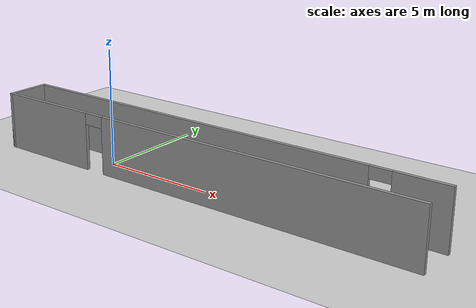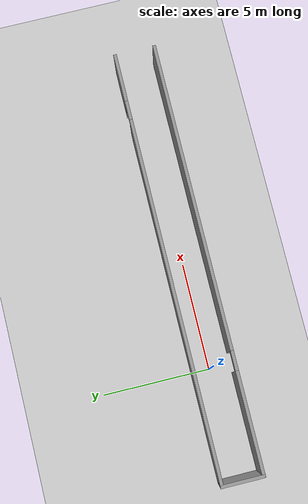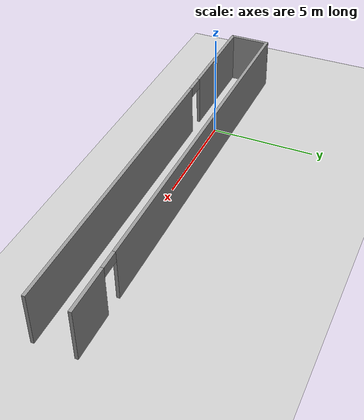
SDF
<sdf version="1.6">
 <world name="default">
  <light name="sun" type="directional">
   <pose>0 0 10 0 -0 0</pose>
   <diffuse>0.8 0.8 0.8 1</diffuse>
   <specular>0.2 0.2 0.2 1</specular>
   <attenuation>
    <range>1000</range>
    <constant>0.9</constant>
    <linear>0.01</linear>
    <quadratic>0.001</quadratic>
   </attenuation>
   <direction>-0.5 0.1 -0.9</direction>
  </light>
  <model name="ground_plane">
   <static>1</static>
   <link name="link">
    <collision name="collision">
     <geometry><plane><normal>0 0 1</normal><size>100 100</size></plane></geometry>
     <surface>
      <contact><collide_bitmask>65535</collide_bitmask></contact>
      <friction><ode><mu>100</mu><mu2>50</mu2></ode></friction>
     </surface>
    </collision>
    <visual name="visual">
     <cast_shadows>0</cast_shadows>
     <geometry><plane><normal>0 0 1</normal><size>100 100</size></plane></geometry>
     <material>
      <script><uri>file://media/materials/scripts/gazebo.material</uri><name>Gazebo/Grey</name></script>
     </material>
    </visual>
   </link>
  </model>
  <gravity>0 0 -9.8</gravity>
  <magnetic_field>6e-06 2.3e-05 -4.2e-05</magnetic_field>
  <atmosphere type="adiabatic"/>
  <physics name="default_physics" default="0" type="ode">
   <max_step_size>0.001</max_step_size>
   <real_time_factor>1</real_time_factor>
   <real_time_update_rate>1000</real_time_update_rate>
  </physics>
  <scene><ambient>0.4 0.4 0.4 1</ambient><background>0.7 0.7 0.7 1</background><shadows>1</shadows></scene>
  <spherical_coordinates>
   <surface_model>EARTH_WGS84</surface_model>
   <latitude_deg>0</latitude_deg>
   <longitude_deg>0</longitude_deg>
   <elevation>0</elevation>
   <heading_deg>0</heading_deg>
  </spherical_coordinates>
  <model name="niesymetryczne_drzwi">
   <pose>4.90567 0.483284 0 0 -0 0</pose>
   <link name="Wall_0">
    <pose>0 0.3075 0 0 -0 0</pose>
    <visual name="Wall_0_Visual_0">
     <pose>-1.58876 0 1.25 0 -0 0</pose>
     <geometry><box><size>16.8225 0.15 2.5</size></box></geometry>
     <material>
      <script><uri>file://media/materials/scripts/gazebo.material</uri><name>Gazebo/Grey</name></script>
      <ambient>1 1 1 1</ambient>
     </material>
     <meta><layer>0</layer></meta>
    </visual>
    <collision name="Wall_0_Collision_0">
     <geometry><box><size>16.8225 0.15 2.5</size></box></geometry>
     <pose>-1.58876 0 1.25 0 -0 0</pose>
    </collision>
    <visual name="Wall_0_Visual_1">
     <pose>8.86124 0 1.25 0 -0 0</pose>
     <geometry><box><size>2.27753 0.15 2.5</size></box></geometry>
     <material>
      <script><uri>file://media/materials/scripts/gazebo.material</uri><name>Gazebo/Grey</name></script>
      <ambient>1 1 1 1</ambient>
     </material>
     <meta><layer>0</layer></meta>
    </visual>
    <collision name="Wall_0_Collision_1">
     <geometry><box><size>2.27753 0.15 2.5</size></box></geometry>
     <pose>8.86124 0 1.25 0 -0 0</pose>
    </collision>
    <visual name="Wall_0_Visual_2">
     <pose>7.27247 0 2.25 0 -0 0</pose>
     <geometry><box><size>0.9 0.15 0.5</size></box></geometry>
     <material>
      <script><uri>file://media/materials/scripts/gazebo.material</uri><name>Gazebo/Grey</name></script>
      <ambient>1 1 1 1</ambient>
     </material>
     <meta><layer>0</layer></meta>
    </visual>
    <collision name="Wall_0_Collision_2">
     <geometry><box><size>0.9 0.15 0.5</size></box></geometry>
     <pose>7.27247 0 2.25 0 -0 0</pose>
    </collision>
   </link>
   <link name="Wall_2">
    <collision name="Wall_2_Collision">
     <geometry><box><size>2 0.15 2.5</size></box></geometry>
     <pose>0 0 1.25 0 -0 0</pose>
    </collision>
    <visual name="Wall_2_Visual">
     <pose>0 0 1.25 0 -0 0</pose>
     <geometry><box><size>2 0.15 2.5</size></box></geometry>
     <material>
      <script><uri>file://media/materials/scripts/gazebo.material</uri><name>Gazebo/Grey</name></script>
      <ambient>1 1 1 1</ambient>
     </material>
     <meta><layer>0</layer></meta>
    </visual>
    <pose>-9.925 -0.6175 0 0 -0 -1.5708</pose>
   </link>
   <link name="Wall_3">
    <pose>0 -1.5425 0 0 -0 0</pose>
    <visual name="Wall_3_Visual_0">
     <pose>-7.64907 0 1.25 0 -0 0</pose>
     <geometry><box><size>4.70186 0.15 2.5</size></box></geometry>
     <material>
      <script><uri>file://media/materials/scripts/gazebo.material</uri><name>Gazebo/Grey</name></script>
      <ambient>1 1 1 1</ambient>
     </material>
     <meta><layer>0</layer></meta>
    </visual>
    <collision name="Wall_3_Collision_0">
     <geometry><box><size>4.70186 0.15 2.5</size></box></geometry>
     <pose>-7.64907 0 1.25 0 -0 0</pose>
    </collision>
    <visual name="Wall_3_Visual_1">
     <pose>2.80093 0 1.25 0 -0 0</pose>
     <geometry><box><size>14.3981 0.15 2.5</size></box></geometry>
     <material>
      <script><uri>file://media/materials/scripts/gazebo.material</uri><name>Gazebo/Grey</name></script>
      <ambient>1 1 1 1</ambient>
     </material>
     <meta><layer>0</layer></meta>
    </visual>
    <collision name="Wall_3_Collision_1">
     <geometry><box><size>14.3981 0.15 2.5</size></box></geometry>
     <pose>2.80093 0 1.25 0 -0 0</pose>
    </collision>
    <visual name="Wall_3_Visual_2">
     <pose>-4.84814 0 2.25 0 -0 0</pose>
     <geometry><box><size>0.9 0.15 0.5</size></box></geometry>
     <material>
      <script><uri>file://media/materials/scripts/gazebo.material</uri><name>Gazebo/Grey</name></script>
      <ambient>1 1 1 1</ambient>
     </material>
     <meta><layer>0</layer></meta>
    </visual>
    <collision name="Wall_3_Collision_2">
     <geometry><box><size>0.9 0.15 0.5</size></box></geometry>
     <pose>-4.84814 0 2.25 0 -0 0</pose>
    </collision>
   </link>
   <static>1</static>
  </model>
 </world>
</sdf>
